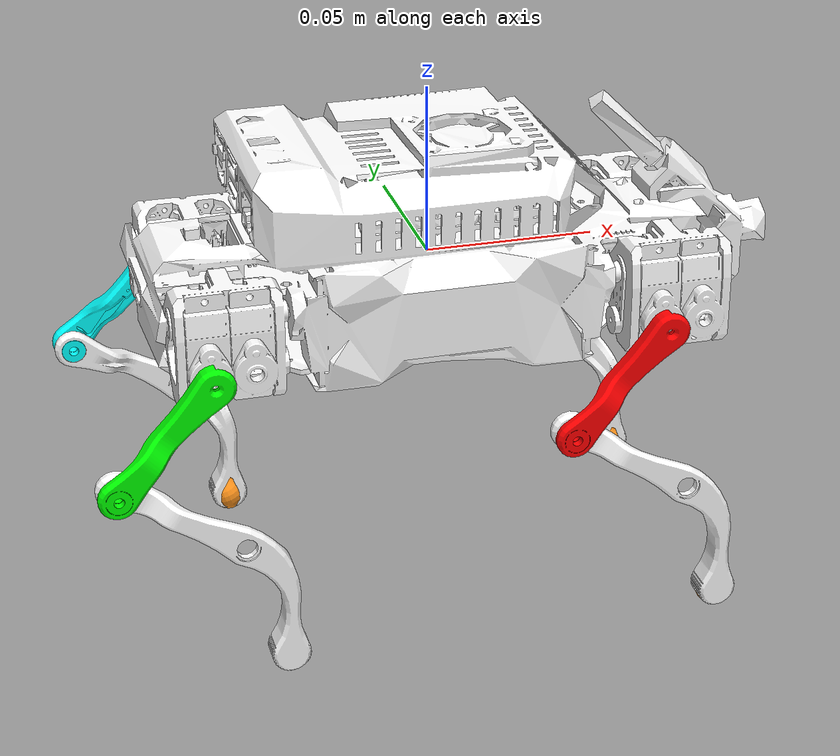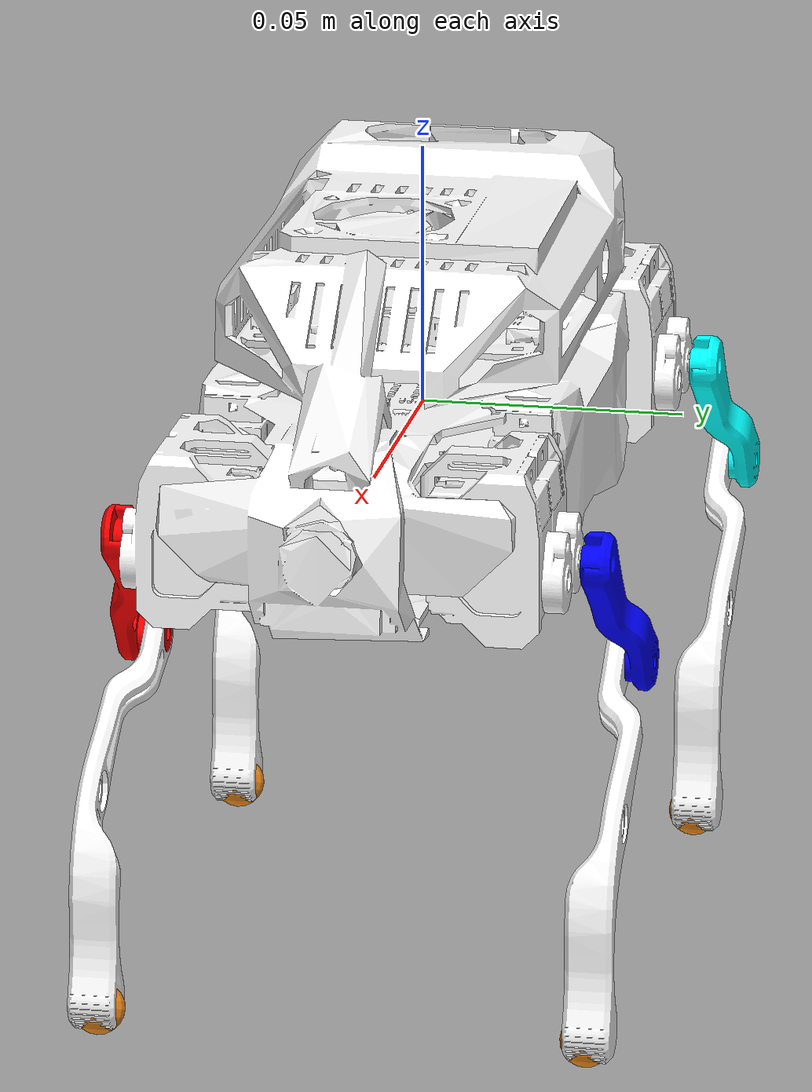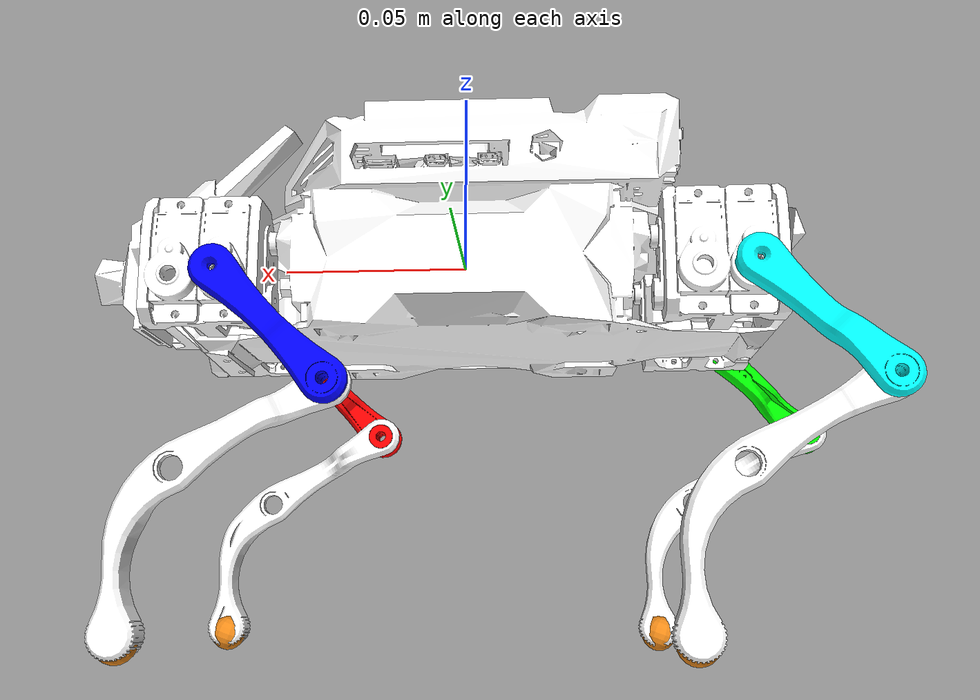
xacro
<?xml version="1.0" encoding="utf-8"?>
<robot
  name="wavego">
  <mujoco>
        <compiler
        meshdir="meshes/"
        balanceinertia="true"
        discardvisual="false" />
  </mujoco>
  <link name="base">
    <visual>
      <origin rpy="0 0 0" xyz="0 0 0"/>
      <geometry>
        <box size="0.001 0.001 0.001"/>
      </geometry>
    </visual>
  </link>
  <link
    name="trunk">
    <inertial>
      <origin
        xyz="2.4203E-06 -0.0015067 0.0062183"
        rpy="0 0 0" />
      <mass
        value="0.37688" />
      <inertia
        ixx="2.5671E-05"
        ixy="9.8579E-09"
        ixz="2.5665E-07"
        iyy="7.8552E-05"
        iyz="-3.6661E-08"
        izz="9.0869E-05" />
    </inertial>
    <visual>
      <origin
        xyz="0 0 0"
        rpy="0 0 0" />
      <geometry>
        <mesh
          filename="package://meshes/trunk.STL" />
      </geometry>
      <material
        name="">
        <color
          rgba="1 1 1 1" />
      </material>
    </visual>
    <collision>
      <origin
        xyz="0 0 0"
        rpy="0 0 0" />
      <geometry>
        <mesh
          filename="package://meshes/trunk.STL" />
      </geometry>
    </collision>
  </link>
  <joint name="floating_base" type="fixed">
    <origin rpy="0 0 0" xyz="0 0 0"/>
    <parent link="base"/>
    <child link="trunk"/>
  </joint>
  <link
    name="fl_l0">
    <inertial>
      <origin
        xyz="0.01662 -0.00013721 -0.0063401"
        rpy="0 0 0" />
      <mass
        value="0.03069" />
      <inertia
        ixx="8.835E-07"
        ixy="1.5955E-08"
        ixz="-2.1595E-08"
        iyy="1.1145E-06"
        iyz="3.351E-09"
        izz="7.5868E-07" />
    </inertial>
    <visual>
      <origin
        xyz="0 0 0"
        rpy="0 0 0" />
      <geometry>
        <mesh
          filename="package://meshes/fl_l0.STL" />
      </geometry>
      <material
        name="">
        <color
          rgba="1 1 1 1" />
      </material>
    </visual>
    <collision>
      <origin
        xyz="0 0 0"
        rpy="0 0 0" />
      <geometry>
        <mesh
          filename="package://meshes/fl_l0.STL" />
      </geometry>
    </collision>
  </link>
  <joint
    name="fl_j0"
    type="revolute">
    <origin
      xyz="0.046331 0.026081 0"
      rpy="0 0 0" />
    <parent
      link="trunk" />
    <child
      link="fl_l0" />
    <axis
      xyz="1 0 0" />
    <limit
      lower="0.0"
      upper="1.570796"
      effort="55"
      velocity="10" />
  </joint>
  <link
    name="fl_l1">
    <inertial>
      <origin
        xyz="-0.01438 -0.0012128 -0.01438"
        rpy="0 0 0" />
      <mass
        value="0.00349" />
      <inertia
        ixx="1.4299E-07"
        ixy="1.908E-08"
        ixz="-1.2357E-07"
        iyy="2.7172E-07"
        iyz="1.908E-08"
        izz="1.4299E-07" />
    </inertial>
    <visual>
      <origin
        xyz="0 0 0"
        rpy="0 0 0" />
      <geometry>
        <mesh
          filename="package://meshes/fl_l1.STL" />
      </geometry>
      <material
        name="blue">
        <color
          rgba="0 0 1 1" />
      </material>
    </visual>
    <collision>
      <origin
        xyz="0 0 0"
        rpy="0 0 0" />
      <geometry>
        <mesh
          filename="package://meshes/fl_l1.STL" />
      </geometry>
    </collision>
  </link>
  <joint
    name="fl_j1"
    type="revolute">
    <origin
      xyz="0.011404 0.02025 -0.0114"
      rpy="0 0 0" />
    <parent
      link="fl_l0" />
    <child
      link="fl_l1" />
    <axis
      xyz="0 1 0" />
    <limit
      lower="-1.570796"
      upper="0.785398"
      effort="55"
      velocity="10" />
  </joint>
  <link
    name="fl_l2">
    <inertial>
      <origin
        xyz="0.032474 -0.0038043 -0.027866"
        rpy="0 0 0" />
      <mass
        value="0.00406" />
      <inertia
        ixx="8.1086E-07"
        ixy="-2.5322E-08"
        ixz="5.8447E-07"
        iyy="1.3701E-06"
        iyz="1.0626E-08"
        izz="5.9024E-07" />
    </inertial>
    <visual>
      <origin
        xyz="0 0 0"
        rpy="0 0 0" />
      <geometry>
        <mesh
          filename="package://meshes/fl_l2.STL" />
      </geometry>
      <material
        name="">
        <color
          rgba="1 1 1 1" />
      </material>
    </visual>
    <collision>
      <origin
        xyz="0 0 0"
        rpy="0 0 0" />
      <geometry>
        <mesh
          filename="package://meshes/fl_l2.STL" />
      </geometry>
    </collision>
  </link>
  <joint
    name="fl_j2"
    type="revolute">
    <origin
      xyz="-0.028284 0.0034 -0.028284"
      rpy="0 0 0" />
    <parent
      link="fl_l1" />
    <child
      link="fl_l2" />
    <axis
      xyz="0 1 0" />
    <limit
      lower="-0.785398"
      upper="0.5235988"
      effort="55"
      velocity="10" />
  </joint>

  <link name="fl_l3">
    <visual>
      <origin rpy="0 0 0" xyz="0 0 0"/>
      <geometry>
        <sphere radius="0.005"/>
      </geometry>
      <material name="orange"/>
    </visual>
    <collision>
      <origin rpy="0 0 0" xyz="0 0 0"/>
      <geometry>
        <sphere radius="0.005"/>
      </geometry>
    </collision>
    <inertial>
      <mass value="0.01"/>
      <inertia ixx="9.6e-06" ixy="0.0" ixz="0.0" iyy="9.6e-06" iyz="0.0" izz="9.6e-06"/>
    </inertial>
  </link>
  <joint name="fl_j3" type="fixed" dont_collapse="true">
    <origin rpy="0 -0.35 0" xyz="0.046 -0.005 -0.059"/>
    <parent link="fl_l2"/>
    <child link="fl_l3"/>
  </joint>

  <link
    name="rl_l0">
    <inertial>
      <origin
        xyz="-0.016948 -0.00013716 -0.0063401"
        rpy="0 0 0" />
      <mass
        value="0.03069" />
      <inertia
        ixx="8.835E-07"
        ixy="-1.5879E-08"
        ixz="2.0506E-08"
        iyy="1.1145E-06"
        iyz="3.3513E-09"
        izz="7.5868E-07" />
    </inertial>
    <visual>
      <origin
        xyz="0 0 0"
        rpy="0 0 0" />
      <geometry>
        <mesh
          filename="package://meshes/rl_l0.STL" />
      </geometry>
      <material
        name="">
        <color
          rgba="1 1 1 1" />
      </material>
    </visual>
    <collision>
      <origin
        xyz="0 0 0"
        rpy="0 0 0" />
      <geometry>
        <mesh
          filename="package://meshes/rl_l0.STL" />
      </geometry>
    </collision>
  </link>
  <joint
    name="rl_j0"
    type="revolute">
    <origin
      xyz="-0.047914 0.026081 0"
      rpy="0 0 0" />
    <parent
      link="trunk" />
    <child
      link="rl_l0" />
    <axis
      xyz="1 0 0" />
    <limit
      lower="0.0"
      upper="1.570796"
      effort="55"
      velocity="10" />
  </joint>
  <link
    name="rl_l1">
    <inertial>
      <origin
        xyz="-0.01438 -0.0012128 -0.01438"
        rpy="0 0 0" />
      <mass
        value="0.00349" />
      <inertia
        ixx="1.4299E-07"
        ixy="1.9081E-08"
        ixz="-1.2357E-07"
        iyy="2.7172E-07"
        iyz="1.9081E-08"
        izz="1.4299E-07" />
    </inertial>
    <visual>
      <origin
        xyz="0 0 0"
        rpy="0 0 0" />
      <geometry>
        <mesh
          filename="package://meshes/rl_l1.STL" />
      </geometry>
      <material
        name="cyan">
        <color
          rgba="0 1 1 1" />
      </material>
    </visual>
    <collision>
      <origin
        xyz="0 0 0"
        rpy="0 0 0" />
      <geometry>
        <mesh
          filename="package://meshes/rl_l1.STL" />
      </geometry>
    </collision>
  </link>
  <joint
    name="rl_j1"
    type="revolute">
    <origin
      xyz="-0.023591 0.02025 -0.0114"
      rpy="0 0 0" />
    <parent
      link="rl_l0" />
    <child
      link="rl_l1" />
    <axis
      xyz="0 1 0" />
    <limit
      lower="-1.570796"
      upper="0.785398"
      effort="55"
      velocity="10" />
  </joint>
  <link
    name="rl_l2">
    <inertial>
      <origin
        xyz="0.032474 -0.0038044 -0.027866"
        rpy="0 0 0" />
      <mass
        value="0.00406" />
      <inertia
        ixx="8.1086E-07"
        ixy="-2.5321E-08"
        ixz="5.8447E-07"
        iyy="1.3701E-06"
        iyz="1.0625E-08"
        izz="5.9024E-07" />
    </inertial>
    <visual>
      <origin
        xyz="0 0 0"
        rpy="0 0 0" />
      <geometry>
        <mesh
          filename="package://meshes/rl_l2.STL" />
      </geometry>
      <material
        name="">
        <color
          rgba="1 1 1 1" />
      </material>
    </visual>
    <collision>
      <origin
        xyz="0 0 0"
        rpy="0 0 0" />
      <geometry>
        <mesh
          filename="package://meshes/rl_l2.STL" />
      </geometry>
    </collision>
  </link>
  <joint
    name="rl_j2"
    type="revolute">
    <origin
      xyz="-0.028284 0.0034001 -0.028284"
      rpy="0 0 0" />
    <parent
      link="rl_l1" />
    <child
      link="rl_l2" />
    <axis
      xyz="0 1 0" />
    <limit
      lower="-0.785398"
      upper="0.5235988"
      effort="55"
      velocity="10" />
  </joint>

  <link name="rl_l3">
    <visual>
      <origin rpy="0 0 0" xyz="0 0 0"/>
      <geometry>
        <sphere radius="0.005"/>
      </geometry>
      <material name="orange"/>
    </visual>
    <collision>
      <origin rpy="0 0 0" xyz="0 0 0"/>
      <geometry>
        <sphere radius="0.005"/>
      </geometry>
    </collision>
    <inertial>
      <mass value="0.01"/>
      <inertia ixx="9.6e-06" ixy="0.0" ixz="0.0" iyy="9.6e-06" iyz="0.0" izz="9.6e-06"/>
    </inertial>
  </link>
  <joint name="rl_j3" type="fixed" dont_collapse="true">
    <origin rpy="0 -0.35 0" xyz="0.046 -0.005 -0.059"/>
    <parent link="rl_l2"/>
    <child link="rl_l3"/>
  </joint>

  <link
    name="fr_l0">
    <inertial>
      <origin
        xyz="0.016609 0.00013716 -0.0063401"
        rpy="0 0 0" />
      <mass
        value="0.03069" />
      <inertia
        ixx="8.835E-07"
        ixy="-1.5879E-08"
        ixz="-2.0506E-08"
        iyy="1.1145E-06"
        iyz="-3.3513E-09"
        izz="7.5868E-07" />
    </inertial>
    <visual>
      <origin
        xyz="0 0 0"
        rpy="0 0 0" />
      <geometry>
        <mesh
          filename="package://meshes/fr_l0.STL" />
      </geometry>
      <material
        name="">
        <color
          rgba="1 1 1 1" />
      </material>
    </visual>
    <collision>
      <origin
        xyz="0 0 0"
        rpy="0 0 0" />
      <geometry>
        <mesh
          filename="package://meshes/fr_l0.STL" />
      </geometry>
    </collision>
  </link>
  <joint
    name="fr_j0"
    type="revolute">
    <origin
      xyz="0.046344 -0.028919 0"
      rpy="0 0 0" />
    <parent
      link="trunk" />
    <child
      link="fr_l0" />
    <axis
      xyz="-1 0 0" />
    <limit
      lower="0.0"
      upper="1.570796"
      effort="55"
      velocity="10" />
  </joint>
  <link
    name="fr_l1">
    <inertial>
      <origin
        xyz="-0.01438 0.0012129 -0.01438"
        rpy="0 0 0" />
      <mass
        value="0.00349" />
      <inertia
        ixx="1.4299E-07"
        ixy="-1.908E-08"
        ixz="-1.2357E-07"
        iyy="2.7172E-07"
        iyz="-1.908E-08"
        izz="1.4299E-07" />
    </inertial>
    <visual>
      <origin
        xyz="0 0 0"
        rpy="0 0 0" />
      <geometry>
        <mesh
          filename="package://meshes/fr_l1.STL" />
      </geometry>
      <material
        name="red">
        <color
          rgba="1 0 0 1" />
      </material>
    </visual>
    <collision>
      <origin
        xyz="0 0 0"
        rpy="0 0 0" />
      <geometry>
        <mesh
          filename="package://meshes/fr_l1.STL" />
      </geometry>
    </collision>
  </link>
  <joint
    name="fr_j1"
    type="revolute">
    <origin
      xyz="0.011391 -0.02025 -0.0114"
      rpy="0 0 0" />
    <parent
      link="fr_l0" />
    <child
      link="fr_l1" />
    <axis
      xyz="0 1 0" />
    <limit
      lower="-1.570796"
      upper="0.785398"
      effort="55"
      velocity="10" />
  </joint>
  <link
    name="fr_l2">
    <inertial>
      <origin
        xyz="0.032474 0.0038043 -0.027866"
        rpy="0 0 0" />
      <mass
        value="0.00406" />
      <inertia
        ixx="8.1086E-07"
        ixy="2.5324E-08"
        ixz="5.8447E-07"
        iyy="1.3701E-06"
        iyz="-1.0628E-08"
        izz="5.9024E-07" />
    </inertial>
    <visual>
      <origin
        xyz="0 0 0"
        rpy="0 0 0" />
      <geometry>
        <mesh
          filename="package://meshes/fr_l2.STL" />
      </geometry>
      <material
        name="">
        <color
          rgba="1 1 1 1" />
      </material>
    </visual>
    <collision>
      <origin
        xyz="0 0 0"
        rpy="0 0 0" />
      <geometry>
        <mesh
          filename="package://meshes/fr_l2.STL" />
      </geometry>
    </collision>
  </link>
  <joint
    name="fr_j2"
    type="revolute">
    <origin
      xyz="-0.028284 -0.0034 -0.028284"
      rpy="0 0 0" />
    <parent
      link="fr_l1" />
    <child
      link="fr_l2" />
    <axis
      xyz="0 1 0" />
    <limit
      lower="-0.785398"
      upper="0.5235988"
      effort="55"
      velocity="10" />
  </joint>

  <link name="fr_l3">
    <visual>
      <origin rpy="0 0 0" xyz="0 0 0"/>
      <geometry>
        <sphere radius="0.005"/>
      </geometry>
      <material name="orange"/>
    </visual>
    <collision>
      <origin rpy="0 0 0" xyz="0 0 0"/>
      <geometry>
        <sphere radius="0.005"/>
      </geometry>
    </collision>
    <inertial>
      <mass value="0.01"/>
      <inertia ixx="9.6e-06" ixy="0.0" ixz="0.0" iyy="9.6e-06" iyz="0.0" izz="9.6e-06"/>
    </inertial>
  </link>
  <joint name="fr_j3" type="fixed" dont_collapse="true">
    <origin rpy="0 -0.35 0" xyz="0.046 0.005 -0.059"/>
    <parent link="fr_l2"/>
    <child link="fr_l3"/>
  </joint>

  <link
    name="rr_l0">
    <inertial>
      <origin
        xyz="-0.016946 0.00013722 -0.0063401"
        rpy="0 0 0" />
      <mass
        value="0.03069" />
      <inertia
        ixx="8.835E-07"
        ixy="1.5955E-08"
        ixz="2.1595E-08"
        iyy="1.1145E-06"
        iyz="-3.351E-09"
        izz="7.5868E-07" />
    </inertial>
    <visual>
      <origin
        xyz="0 0 0"
        rpy="0 0 0" />
      <geometry>
        <mesh
          filename="package://meshes/rr_l0.STL" />
      </geometry>
      <material
        name="">
        <color
          rgba="1 1 1 1" />
      </material>
    </visual>
    <collision>
      <origin
        xyz="0 0 0"
        rpy="0 0 0" />
      <geometry>
        <mesh
          filename="package://meshes/rr_l0.STL" />
      </geometry>
    </collision>
  </link>
  <joint
    name="rr_j0"
    type="revolute">
    <origin
      xyz="-0.047914 -0.028919 0"
      rpy="0 0 0" />
    <parent
      link="trunk" />
    <child
      link="rr_l0" />
    <axis
      xyz="-1 0 0" />
    <limit
      lower="0.0"
      upper="1.570796"
      effort="55"
      velocity="10" />
  </joint>
  <link
    name="rr_l1">
    <inertial>
      <origin
        xyz="-0.01438 0.0012128 -0.01438"
        rpy="0 0 0" />
      <mass
        value="0.00349" />
      <inertia
        ixx="1.4299E-07"
        ixy="-1.908E-08"
        ixz="-1.2357E-07"
        iyy="2.7172E-07"
        iyz="-1.908E-08"
        izz="1.4299E-07" />
    </inertial>
    <visual>
      <origin
        xyz="0 0 0"
        rpy="0 0 0" />
      <geometry>
        <mesh
          filename="package://meshes/rr_l1.STL" />
      </geometry>
      <material
        name="green">
        <color
          rgba="0 1 0 1" />
      </material>
    </visual>
    <collision>
      <origin
        xyz="0 0 0"
        rpy="0 0 0" />
      <geometry>
        <mesh
          filename="package://meshes/rr_l1.STL" />
      </geometry>
    </collision>
  </link>
  <joint
    name="rr_j1"
    type="revolute">
    <origin
      xyz="-0.023591 -0.02025 -0.0114"
      rpy="0 0 0" />
    <parent
      link="rr_l0" />
    <child
      link="rr_l1" />
    <axis
      xyz="0 1 0" />
    <limit
      lower="-1.570796"
      upper="0.785398"
      effort="55"
      velocity="10" />
  </joint>
  <link
    name="rr_l2">
    <inertial>
      <origin
        xyz="0.032474 0.0038044 -0.027866"
        rpy="0 0 0" />
      <mass
        value="0.00406" />
      <inertia
        ixx="8.1086E-07"
        ixy="2.5322E-08"
        ixz="5.8447E-07"
        iyy="1.3701E-06"
        iyz="-1.0626E-08"
        izz="5.9024E-07" />
    </inertial>
    <visual>
      <origin
        xyz="0 0 0"
        rpy="0 0 0" />
      <geometry>
        <mesh
          filename="package://meshes/rr_l2.STL" />
      </geometry>
      <material
        name="">
        <color
          rgba="1 1 1 1" />
      </material>
    </visual>
    <collision>
      <origin
        xyz="0 0 0"
        rpy="0 0 0" />
      <geometry>
        <mesh
          filename="package://meshes/rr_l2.STL" />
      </geometry>
    </collision>
  </link>
  <joint
    name="rr_j2"
    type="revolute">
    <origin
      xyz="-0.028284 -0.0034 -0.028284"
      rpy="0 0 0" />
    <parent
      link="rr_l1" />
    <child
      link="rr_l2" />
    <axis
      xyz="0 1 0" />
    <limit
      lower="-0.785398"
      upper="0.5235988"
      effort="55"
      velocity="10" />
  </joint>

  <link name="rr_l3">
    <visual>
      <origin rpy="0 0 0" xyz="0 0 0"/>
      <geometry>
        <sphere radius="0.005"/>
      </geometry>
      <material name="orange"/>
    </visual>
    <collision>
      <origin rpy="0 0 0" xyz="0 0 0"/>
      <geometry>
        <sphere radius="0.005"/>
      </geometry>
    </collision>
    <inertial>
      <mass value="0.01"/>
      <inertia ixx="9.6e-06" ixy="0.0" ixz="0.0" iyy="9.6e-06" iyz="0.0" izz="9.6e-06"/>
    </inertial>
  </link>
  <joint name="rr_j3" type="fixed" dont_collapse="true">
    <origin rpy="0 -0.35 0" xyz="0.046 0.005 -0.059"/>
    <parent link="rr_l2"/>
    <child link="rr_l3"/>
  </joint>

</robot>
